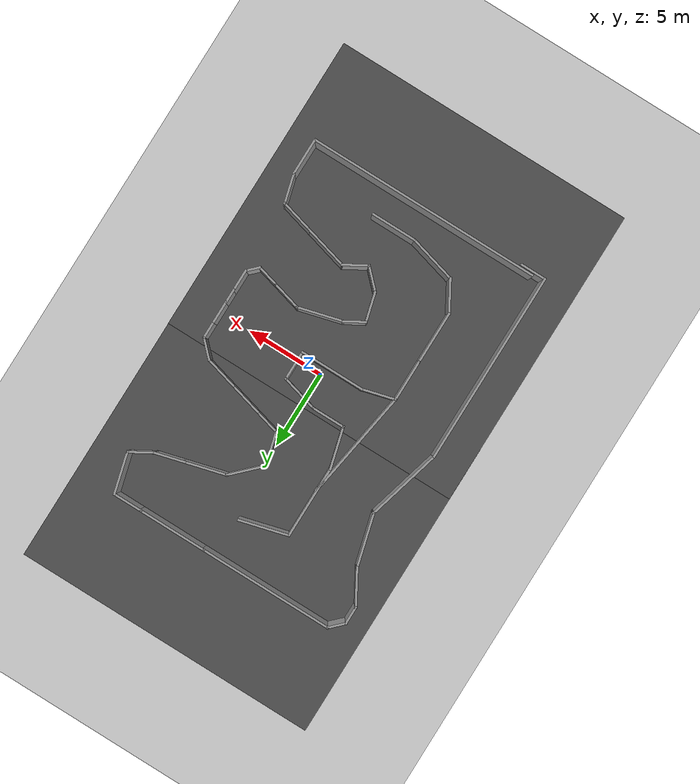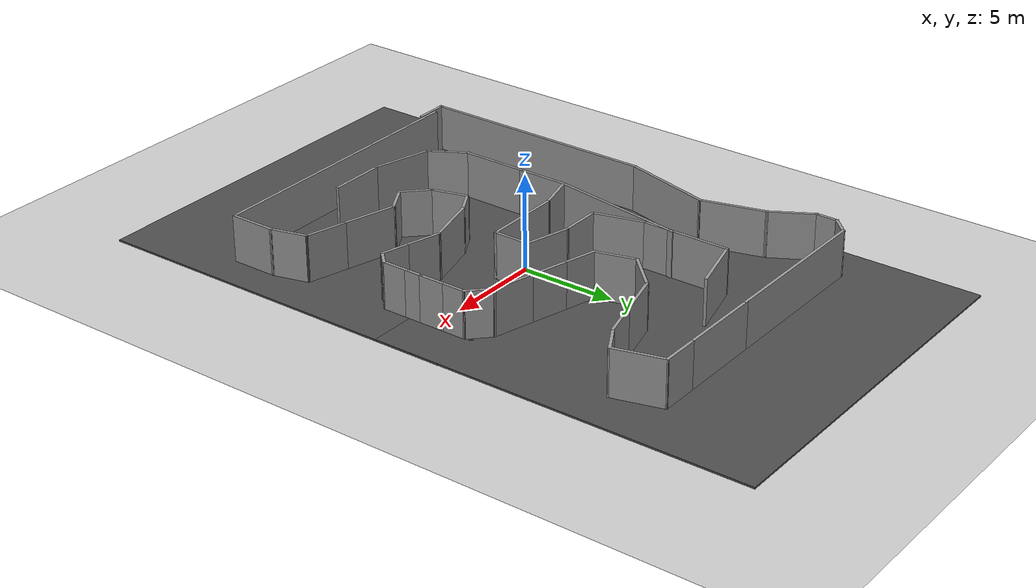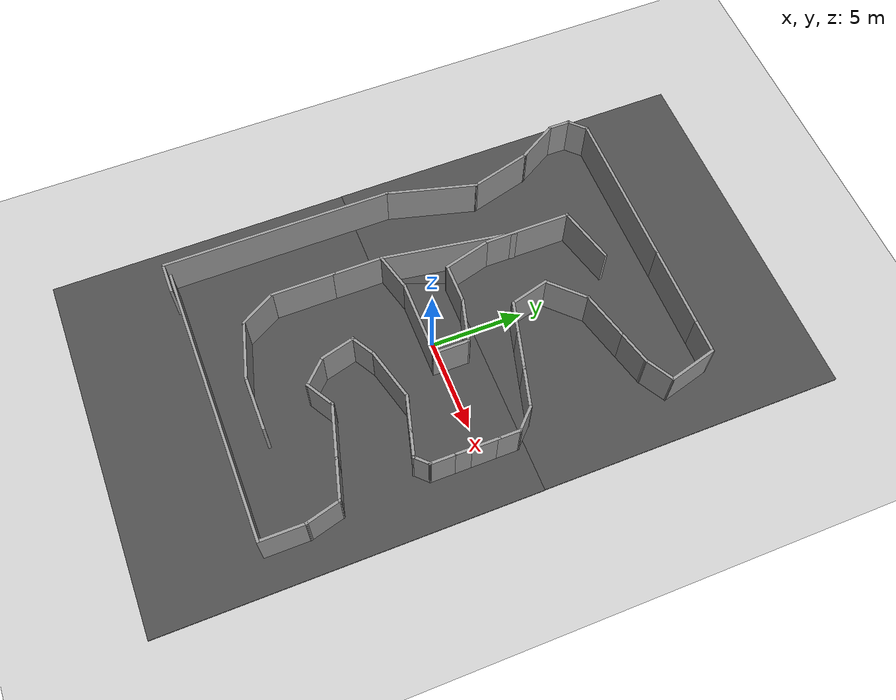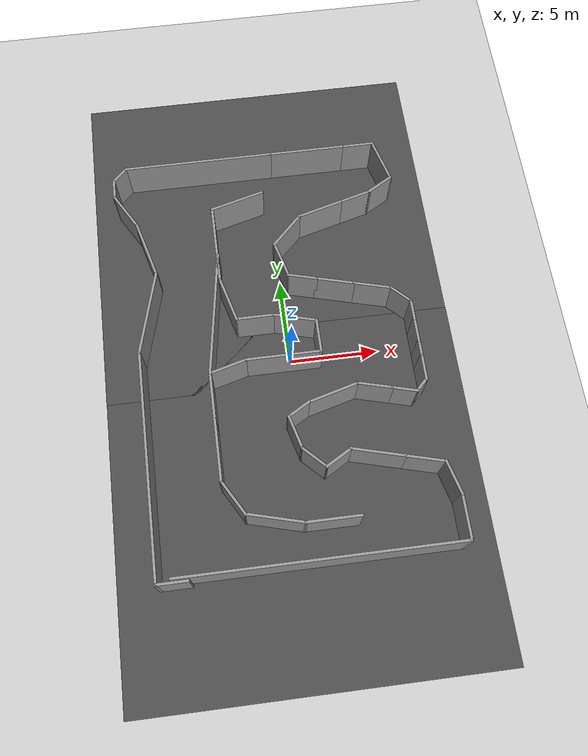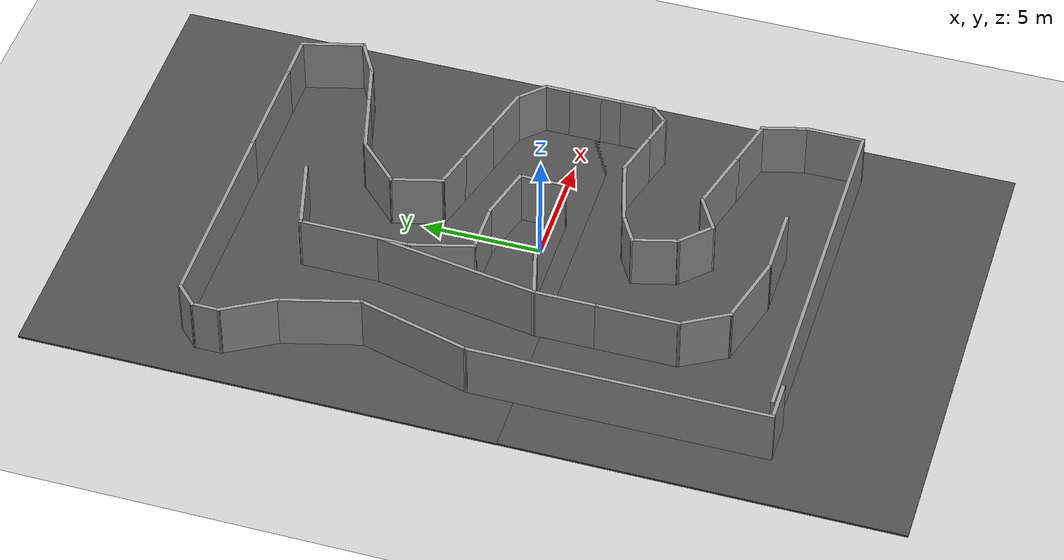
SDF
<sdf version="1.6">
 <world name="default">
  <light name="sun" type="directional">
   <pose>0 0 10 0 -0 0</pose>
   <diffuse>0.8 0.8 0.8 1</diffuse>
   <specular>0.2 0.2 0.2 1</specular>
   <attenuation>
    <range>1000</range>
    <constant>0.9</constant>
    <linear>0.01</linear>
    <quadratic>0.001</quadratic>
   </attenuation>
   <direction>-0.5 0.1 -0.9</direction>
  </light>
  <model name="ground_plane">
   <static>1</static>
   <link name="link">
    <collision name="collision">
     <geometry><plane><normal>0 0 1</normal><size>100 100</size></plane></geometry>
     <surface>
      <contact><collide_bitmask>65535</collide_bitmask></contact>
      <friction><ode><mu>100</mu><mu2>50</mu2></ode></friction>
     </surface>
    </collision>
    <visual name="visual">
     <cast_shadows>0</cast_shadows>
     <geometry><plane><normal>0 0 1</normal><size>100 100</size></plane></geometry>
     <material>
      <script><uri>file://media/materials/scripts/gazebo.material</uri><name>Gazebo/Grey</name></script>
     </material>
    </visual>
   </link>
  </model>
  <gravity>0 0 -9.8</gravity>
  <magnetic_field>6e-06 2.3e-05 -4.2e-05</magnetic_field>
  <atmosphere type="adiabatic"/>
  <physics name="default_physics" default="0" type="ode">
   <max_step_size>0.001</max_step_size>
   <real_time_factor>1</real_time_factor>
   <real_time_update_rate>1000</real_time_update_rate>
  </physics>
  <scene><ambient>0.4 0.4 0.4 1</ambient><background>0.7 0.7 0.7 1</background><shadows>1</shadows></scene>
  <spherical_coordinates>
   <surface_model>EARTH_WGS84</surface_model>
   <latitude_deg>0</latitude_deg>
   <longitude_deg>0</longitude_deg>
   <elevation>0</elevation>
   <heading_deg>0</heading_deg>
  </spherical_coordinates>
  <model name="map_v3">
   <pose>-0.727816 0.348135 0 0 -0 0</pose>
   <link name="Wall_100">
    <collision name="Wall_100_Collision">
     <geometry><box><size>2.25 0.15 2.5</size></box></geometry>
     <pose>0 0 1.25 0 -0 0</pose>
    </collision>
    <visual name="Wall_100_Visual">
     <pose>0 0 1.25 0 -0 0</pose>
     <geometry><box><size>2.25 0.15 2.5</size></box></geometry>
     <material>
      <script><uri>file://media/materials/scripts/gazebo.material</uri><name>Gazebo/Grey</name></script>
      <ambient>1 1 1 1</ambient>
     </material>
     <meta><layer>0</layer></meta>
    </visual>
    <pose>3.69163 3.23708 0 0 -0 2.87979</pose>
   </link>
   <link name="Wall_101">
    <collision name="Wall_101_Collision">
     <geometry><box><size>1.75 0.15 2.5</size></box></geometry>
     <pose>0 0 1.25 0 -0 0</pose>
    </collision>
    <visual name="Wall_101_Visual">
     <pose>0 0 1.25 0 -0 0</pose>
     <geometry><box><size>1.75 0.15 2.5</size></box></geometry>
     <material>
      <script><uri>file://media/materials/scripts/gazebo.material</uri><name>Gazebo/Grey</name></script>
      <ambient>1 1 1 1</ambient>
     </material>
     <meta><layer>0</layer></meta>
    </visual>
    <pose>1.90467 3.7159 0 0 -0 2.87979</pose>
   </link>
   <link name="Wall_102">
    <collision name="Wall_102_Collision">
     <geometry><box><size>2.25 0.15 2.5</size></box></geometry>
     <pose>0 0 1.25 0 -0 0</pose>
    </collision>
    <visual name="Wall_102_Visual">
     <pose>0 0 1.25 0 -0 0</pose>
     <geometry><box><size>2.25 0.15 2.5</size></box></geometry>
     <material>
      <script><uri>file://media/materials/scripts/gazebo.material</uri><name>Gazebo/Grey</name></script>
      <ambient>1 1 1 1</ambient>
     </material>
     <meta><layer>0</layer></meta>
    </visual>
    <pose>0.860167 4.93718 0 0 -0 1.8326</pose>
   </link>
   <link name="Wall_103">
    <collision name="Wall_103_Collision">
     <geometry><box><size>2.5 0.15 2.5</size></box></geometry>
     <pose>0 0 1.25 0 -0 0</pose>
    </collision>
    <visual name="Wall_103_Visual">
     <pose>0 0 1.25 0 -0 0</pose>
     <geometry><box><size>2.5 0.15 2.5</size></box></geometry>
     <material>
      <script><uri>file://media/materials/scripts/gazebo.material</uri><name>Gazebo/Grey</name></script>
      <ambient>1 1 1 1</ambient>
     </material>
     <meta><layer>0</layer></meta>
    </visual>
    <pose>1.41926 6.78225 0 0 -0 0.785398</pose>
   </link>
   <link name="Wall_104">
    <collision name="Wall_104_Collision">
     <geometry><box><size>2.75 0.15 2.5</size></box></geometry>
     <pose>0 0 1.25 0 -0 0</pose>
    </collision>
    <visual name="Wall_104_Visual">
     <pose>0 0 1.25 0 -0 0</pose>
     <geometry><box><size>2.75 0.15 2.5</size></box></geometry>
     <material>
      <script><uri>file://media/materials/scripts/gazebo.material</uri><name>Gazebo/Grey</name></script>
      <ambient>1 1 1 1</ambient>
     </material>
     <meta><layer>0</layer></meta>
    </visual>
    <pose>3.50581 7.94956 0 0 -0 0.261799</pose>
   </link>
   <link name="Wall_105">
    <collision name="Wall_105_Collision">
     <geometry><box><size>2 0.15 2.5</size></box></geometry>
     <pose>0 0 1.25 0 -0 0</pose>
    </collision>
    <visual name="Wall_105_Visual">
     <pose>0 0 1.25 0 -0 0</pose>
     <geometry><box><size>2 0.15 2.5</size></box></geometry>
     <material>
      <script><uri>file://media/materials/scripts/gazebo.material</uri><name>Gazebo/Grey</name></script>
      <ambient>1 1 1 1</ambient>
     </material>
     <meta><layer>0</layer></meta>
    </visual>
    <pose>5.655 8.52544 0 0 -0 0.261799</pose>
   </link>
   <link name="Wall_106">
    <collision name="Wall_106_Collision">
     <geometry><box><size>1.75 0.15 2.5</size></box></geometry>
     <pose>0 0 1.25 0 -0 0</pose>
    </collision>
    <visual name="Wall_106_Visual">
     <pose>0 0 1.25 0 -0 0</pose>
     <geometry><box><size>1.75 0.15 2.5</size></box></geometry>
     <material>
      <script><uri>file://media/materials/scripts/gazebo.material</uri><name>Gazebo/Grey</name></script>
      <ambient>1 1 1 1</ambient>
     </material>
     <meta><layer>0</layer></meta>
    </visual>
    <pose>7.2413 9.16484 0 0 -0 0.523599</pose>
   </link>
   <link name="Wall_107">
    <collision name="Wall_107_Collision">
     <geometry><box><size>2.75 0.15 2.5</size></box></geometry>
     <pose>0 0 1.25 0 -0 0</pose>
    </collision>
    <visual name="Wall_107_Visual">
     <pose>0 0 1.25 0 -0 0</pose>
     <geometry><box><size>2.75 0.15 2.5</size></box></geometry>
     <material>
      <script><uri>file://media/materials/scripts/gazebo.material</uri><name>Gazebo/Grey</name></script>
      <ambient>1 1 1 1</ambient>
     </material>
     <meta><layer>0</layer></meta>
    </visual>
    <pose>7.59765 10.8205 0 0 -0 1.8326</pose>
   </link>
   <link name="Wall_108">
    <collision name="Wall_108_Collision">
     <geometry><box><size>2 0.15 2.5</size></box></geometry>
     <pose>0 0 1.25 0 -0 0</pose>
    </collision>
    <visual name="Wall_108_Visual">
     <pose>0 0 1.25 0 -0 0</pose>
     <geometry><box><size>2 0.15 2.5</size></box></geometry>
     <material>
      <script><uri>file://media/materials/scripts/gazebo.material</uri><name>Gazebo/Grey</name></script>
      <ambient>1 1 1 1</ambient>
     </material>
     <meta><layer>0</layer></meta>
    </visual>
    <pose>6.33619 12.0763 0 0 -0 3.14159</pose>
   </link>
   <link name="Wall_109">
    <collision name="Wall_109_Collision">
     <geometry><box><size>4.5 0.15 2.5</size></box></geometry>
     <pose>0 0 1.25 0 -0 0</pose>
    </collision>
    <visual name="Wall_109_Visual">
     <pose>0 0 1.25 0 -0 0</pose>
     <geometry><box><size>4.5 0.15 2.5</size></box></geometry>
     <material>
      <script><uri>file://media/materials/scripts/gazebo.material</uri><name>Gazebo/Grey</name></script>
      <ambient>1 1 1 1</ambient>
     </material>
     <meta><layer>0</layer></meta>
    </visual>
    <pose>3.23619 12.0763 0 0 -0 3.14159</pose>
   </link>
   <link name="Wall_110">
    <collision name="Wall_110_Collision">
     <geometry><box><size>8.75 0.15 2.5</size></box></geometry>
     <pose>0 0 1.25 0 -0 0</pose>
    </collision>
    <visual name="Wall_110_Visual">
     <pose>0 0 1.25 0 -0 0</pose>
     <geometry><box><size>8.75 0.15 2.5</size></box></geometry>
     <material>
      <script><uri>file://media/materials/scripts/gazebo.material</uri><name>Gazebo/Grey</name></script>
      <ambient>1 1 1 1</ambient>
     </material>
     <meta><layer>0</layer></meta>
    </visual>
    <pose>-3.23881 12.0763 0 0 -0 3.14159</pose>
   </link>
   <link name="Wall_111">
    <collision name="Wall_111_Collision">
     <geometry><box><size>1.25 0.15 2.5</size></box></geometry>
     <pose>0 0 1.25 0 -0 0</pose>
    </collision>
    <visual name="Wall_111_Visual">
     <pose>0 0 1.25 0 -0 0</pose>
     <geometry><box><size>1.25 0.15 2.5</size></box></geometry>
     <material>
      <script><uri>file://media/materials/scripts/gazebo.material</uri><name>Gazebo/Grey</name></script>
      <ambient>1 1 1 1</ambient>
     </material>
     <meta><layer>0</layer></meta>
    </visual>
    <pose>-7.92772 11.6873 0 0 0 -2.35619</pose>
   </link>
   <link name="Wall_112">
    <collision name="Wall_112_Collision">
     <geometry><box><size>1.25 0.15 2.5</size></box></geometry>
     <pose>0 0 1.25 0 -0 0</pose>
    </collision>
    <visual name="Wall_112_Visual">
     <pose>0 0 1.25 0 -0 0</pose>
     <geometry><box><size>1.25 0.15 2.5</size></box></geometry>
     <material>
      <script><uri>file://media/materials/scripts/gazebo.material</uri><name>Gazebo/Grey</name></script>
      <ambient>1 1 1 1</ambient>
     </material>
     <meta><layer>0</layer></meta>
    </visual>
    <pose>-8.31663 10.7484 0 0 0 -1.5708</pose>
   </link>
   <link name="Wall_113">
    <collision name="Wall_113_Collision">
     <geometry><box><size>2.5 0.15 2.5</size></box></geometry>
     <pose>0 0 1.25 0 -0 0</pose>
    </collision>
    <visual name="Wall_113_Visual">
     <pose>0 0 1.25 0 -0 0</pose>
     <geometry><box><size>2.5 0.15 2.5</size></box></geometry>
     <material>
      <script><uri>file://media/materials/scripts/gazebo.material</uri><name>Gazebo/Grey</name></script>
      <ambient>1 1 1 1</ambient>
     </material>
     <meta><layer>0</layer></meta>
    </visual>
    <pose>-7.72913 9.18085 0 0 0 -1.0472</pose>
   </link>
   <link name="Wall_114">
    <collision name="Wall_114_Collision">
     <geometry><box><size>3.5 0.15 2.5</size></box></geometry>
     <pose>0 0 1.25 0 -0 0</pose>
    </collision>
    <visual name="Wall_114_Visual">
     <pose>0 0 1.25 0 -0 0</pose>
     <geometry><box><size>3.5 0.15 2.5</size></box></geometry>
     <material>
      <script><uri>file://media/materials/scripts/gazebo.material</uri><name>Gazebo/Grey</name></script>
      <ambient>1 1 1 1</ambient>
     </material>
     <meta><layer>0</layer></meta>
    </visual>
    <pose>-6.70811 6.54535 0 0 0 -1.309</pose>
   </link>
   <link name="Wall_115">
    <collision name="Wall_115_Collision">
     <geometry><box><size>5 0.15 2.5</size></box></geometry>
     <pose>0 0 1.25 0 -0 0</pose>
    </collision>
    <visual name="Wall_115_Visual">
     <pose>0 0 1.25 0 -0 0</pose>
     <geometry><box><size>5 0.15 2.5</size></box></geometry>
     <material>
      <script><uri>file://media/materials/scripts/gazebo.material</uri><name>Gazebo/Grey</name></script>
      <ambient>1 1 1 1</ambient>
     </material>
     <meta><layer>0</layer></meta>
    </visual>
    <pose>-6.90222 2.58505 0 0 0 -1.8326</pose>
   </link>
   <link name="Wall_116">
    <collision name="Wall_116_Collision">
     <geometry><box><size>12.5 0.15 2.5</size></box></geometry>
     <pose>0 0 1.25 0 -0 0</pose>
    </collision>
    <visual name="Wall_116_Visual">
     <pose>0 0 1.25 0 -0 0</pose>
     <geometry><box><size>12.5 0.15 2.5</size></box></geometry>
     <material>
      <script><uri>file://media/materials/scripts/gazebo.material</uri><name>Gazebo/Grey</name></script>
      <ambient>1 1 1 1</ambient>
     </material>
     <meta><layer>0</layer></meta>
    </visual>
    <pose>-7.52986 -5.93232 0 0 0 -1.5708</pose>
   </link>
   <link name="Wall_117">
    <collision name="Wall_117_Collision">
     <geometry><box><size>1.75 0.15 2.5</size></box></geometry>
     <pose>0 0 1.25 0 -0 0</pose>
    </collision>
    <visual name="Wall_117_Visual">
     <pose>0 0 1.25 0 -0 0</pose>
     <geometry><box><size>1.75 0.15 2.5</size></box></geometry>
     <material>
      <script><uri>file://media/materials/scripts/gazebo.material</uri><name>Gazebo/Grey</name></script>
      <ambient>1 1 1 1</ambient>
     </material>
     <meta><layer>0</layer></meta>
    </visual>
    <pose>-6.72986 -12.1073 0 0 -0 0</pose>
   </link>
   <link name="Wall_119">
    <collision name="Wall_119_Collision">
     <geometry><box><size>3 0.15 2.5</size></box></geometry>
     <pose>0 0 1.25 0 -0 0</pose>
    </collision>
    <visual name="Wall_119_Visual">
     <pose>0 0 1.25 0 -0 0</pose>
     <geometry><box><size>3 0.15 2.5</size></box></geometry>
     <material>
      <script><uri>file://media/materials/scripts/gazebo.material</uri><name>Gazebo/Grey</name></script>
      <ambient>1 1 1 1</ambient>
     </material>
     <meta><layer>0</layer></meta>
    </visual>
    <pose>1.64549 -9.99289 0 0 -0 3.14159</pose>
   </link>
   <link name="Wall_120">
    <collision name="Wall_120_Collision">
     <geometry><box><size>3.25 0.15 2.5</size></box></geometry>
     <pose>0 0 1.25 0 -0 0</pose>
    </collision>
    <visual name="Wall_120_Visual">
     <pose>0 0 1.25 0 -0 0</pose>
     <geometry><box><size>3.25 0.15 2.5</size></box></geometry>
     <material>
      <script><uri>file://media/materials/scripts/gazebo.material</uri><name>Gazebo/Grey</name></script>
      <ambient>1 1 1 1</ambient>
     </material>
     <meta><layer>0</layer></meta>
    </visual>
    <pose>-1.2767 -9.59172 0 0 -0 2.87979</pose>
   </link>
   <link name="Wall_121">
    <collision name="Wall_121_Collision">
     <geometry><box><size>2.25 0.15 2.5</size></box></geometry>
     <pose>0 0 1.25 0 -0 0</pose>
    </collision>
    <visual name="Wall_121_Visual">
     <pose>0 0 1.25 0 -0 0</pose>
     <geometry><box><size>2.25 0.15 2.5</size></box></geometry>
     <material>
      <script><uri>file://media/materials/scripts/gazebo.material</uri><name>Gazebo/Grey</name></script>
      <ambient>1 1 1 1</ambient>
     </material>
     <meta><layer>0</layer></meta>
    </visual>
    <pose>-3.29888 -8.28122 0 0 -0 2.0944</pose>
   </link>
   <link name="Wall_122">
    <collision name="Wall_122_Collision">
     <geometry><box><size>3.5 0.15 2.5</size></box></geometry>
     <pose>0 0 1.25 0 -0 0</pose>
    </collision>
    <visual name="Wall_122_Visual">
     <pose>0 0 1.25 0 -0 0</pose>
     <geometry><box><size>3.5 0.15 2.5</size></box></geometry>
     <material>
      <script><uri>file://media/materials/scripts/gazebo.material</uri><name>Gazebo/Grey</name></script>
      <ambient>1 1 1 1</ambient>
     </material>
     <meta><layer>0</layer></meta>
    </visual>
    <pose>-3.82388 -5.69689 0 0 -0 1.5708</pose>
   </link>
   <link name="Wall_123">
    <collision name="Wall_123_Collision">
     <geometry><box><size>2.75 0.15 2.5</size></box></geometry>
     <pose>0 0 1.25 0 -0 0</pose>
    </collision>
    <visual name="Wall_123_Visual">
     <pose>0 0 1.25 0 -0 0</pose>
     <geometry><box><size>2.75 0.15 2.5</size></box></geometry>
     <material>
      <script><uri>file://media/materials/scripts/gazebo.material</uri><name>Gazebo/Grey</name></script>
      <ambient>1 1 1 1</ambient>
     </material>
     <meta><layer>0</layer></meta>
    </visual>
    <pose>-3.82388 -2.72189 0 0 -0 1.5708</pose>
   </link>
   <link name="Wall_124">
    <collision name="Wall_124_Collision">
     <geometry><box><size>2.25 0.15 2.5</size></box></geometry>
     <pose>0 0 1.25 0 -0 0</pose>
    </collision>
    <visual name="Wall_124_Visual">
     <pose>0 0 1.25 0 -0 0</pose>
     <geometry><box><size>2.25 0.15 2.5</size></box></geometry>
     <material>
      <script><uri>file://media/materials/scripts/gazebo.material</uri><name>Gazebo/Grey</name></script>
      <ambient>1 1 1 1</ambient>
     </material>
     <meta><layer>0</layer></meta>
    </visual>
    <pose>-2.80966 -1.15013 0 0 -0 0.261799</pose>
   </link>
   <link name="Wall_125">
    <collision name="Wall_125_Collision">
     <geometry><box><size>4.25 0.15 2.5</size></box></geometry>
     <pose>0 0 1.25 0 -0 0</pose>
    </collision>
    <visual name="Wall_125_Visual">
     <pose>0 0 1.25 0 -0 0</pose>
     <geometry><box><size>4.25 0.15 2.5</size></box></geometry>
     <material>
      <script><uri>file://media/materials/scripts/gazebo.material</uri><name>Gazebo/Grey</name></script>
      <ambient>1 1 1 1</ambient>
     </material>
     <meta><layer>0</layer></meta>
    </visual>
    <pose>0.254562 -0.878375 0 0 -0 0</pose>
   </link>
   <link name="Wall_126">
    <collision name="Wall_126_Collision">
     <geometry><box><size>2 0.15 2.5</size></box></geometry>
     <pose>0 0 1.25 0 -0 0</pose>
    </collision>
    <visual name="Wall_126_Visual">
     <pose>0 0 1.25 0 -0 0</pose>
     <geometry><box><size>2 0.15 2.5</size></box></geometry>
     <material>
      <script><uri>file://media/materials/scripts/gazebo.material</uri><name>Gazebo/Grey</name></script>
      <ambient>1 1 1 1</ambient>
     </material>
     <meta><layer>0</layer></meta>
    </visual>
    <pose>2.30456 0.046625 0 0 -0 1.5708</pose>
   </link>
   <link name="Wall_127">
    <collision name="Wall_127_Collision">
     <geometry><box><size>2.5 0.15 2.5</size></box></geometry>
     <pose>0 0 1.25 0 -0 0</pose>
    </collision>
    <visual name="Wall_127_Visual">
     <pose>0 0 1.25 0 -0 0</pose>
     <geometry><box><size>2.5 0.15 2.5</size></box></geometry>
     <material>
      <script><uri>file://media/materials/scripts/gazebo.material</uri><name>Gazebo/Grey</name></script>
      <ambient>1 1 1 1</ambient>
     </material>
     <meta><layer>0</layer></meta>
    </visual>
    <pose>1.1696 1.27574 0 0 -0 2.87979</pose>
   </link>
   <link name="Wall_128">
    <collision name="Wall_128_Collision">
     <geometry><box><size>2.25 0.15 2.5</size></box></geometry>
     <pose>0 0 1.25 0 -0 0</pose>
    </collision>
    <visual name="Wall_128_Visual">
     <pose>0 0 1.25 0 -0 0</pose>
     <geometry><box><size>2.25 0.15 2.5</size></box></geometry>
     <material>
      <script><uri>file://media/materials/scripts/gazebo.material</uri><name>Gazebo/Grey</name></script>
      <ambient>1 1 1 1</ambient>
     </material>
     <meta><layer>0</layer></meta>
    </visual>
    <pose>-1.01536 1.57985 0 0 -0 3.14159</pose>
   </link>
   <link name="Wall_129">
    <collision name="Wall_129_Collision">
     <geometry><box><size>2.75 0.15 2.5</size></box></geometry>
     <pose>0 0 1.25 0 -0 0</pose>
    </collision>
    <visual name="Wall_129_Visual">
     <pose>0 0 1.25 0 -0 0</pose>
     <geometry><box><size>2.75 0.15 2.5</size></box></geometry>
     <material>
      <script><uri>file://media/materials/scripts/gazebo.material</uri><name>Gazebo/Grey</name></script>
      <ambient>1 1 1 1</ambient>
     </material>
     <meta><layer>0</layer></meta>
    </visual>
    <pose>-2.40183 2.83555 0 0 -0 1.8326</pose>
   </link>
   <link name="Wall_130">
    <collision name="Wall_130_Collision">
     <geometry><box><size>4.75 0.15 2.5</size></box></geometry>
     <pose>0 0 1.25 0 -0 0</pose>
    </collision>
    <visual name="Wall_130_Visual">
     <pose>0 0 1.25 0 -0 0</pose>
     <geometry><box><size>4.75 0.15 2.5</size></box></geometry>
     <material>
      <script><uri>file://media/materials/scripts/gazebo.material</uri><name>Gazebo/Grey</name></script>
      <ambient>1 1 1 1</ambient>
     </material>
     <meta><layer>0</layer></meta>
    </visual>
    <pose>-2.73829 6.39126 0 0 -0 1.5708</pose>
   </link>
   <link name="Wall_131">
    <collision name="Wall_131_Collision">
     <geometry><box><size>3.25 0.15 2.5</size></box></geometry>
     <pose>0 0 1.25 0 -0 0</pose>
    </collision>
    <visual name="Wall_131_Visual">
     <pose>0 0 1.25 0 -0 0</pose>
     <geometry><box><size>3.25 0.15 2.5</size></box></geometry>
     <material>
      <script><uri>file://media/materials/scripts/gazebo.material</uri><name>Gazebo/Grey</name></script>
      <ambient>1 1 1 1</ambient>
     </material>
     <meta><layer>0</layer></meta>
    </visual>
    <pose>-1.24111 9.09243 0 0 -0 0.261799</pose>
   </link>
   <link name="Wall_133">
    <collision name="Wall_133_Collision">
     <geometry><box><size>7.34611 0.15 2.5</size></box></geometry>
     <pose>0 0 1.25 0 -0 0</pose>
    </collision>
    <visual name="Wall_133_Visual">
     <pose>0 0 1.25 0 -0 0</pose>
     <geometry><box><size>7.34611 0.15 2.5</size></box></geometry>
     <material>
      <script><uri>file://media/materials/scripts/gazebo.material</uri><name>Gazebo/Grey</name></script>
      <ambient>1 1 1 1</ambient>
     </material>
     <meta><layer>0</layer></meta>
    </visual>
    <pose>-3.26118 2.13189 0 0 0 -1.72783</pose>
   </link>
   <link name="Wall_81">
    <collision name="Wall_81_Collision">
     <geometry><box><size>15.25 0.15 2.5</size></box></geometry>
     <pose>0 0 1.25 0 -0 0</pose>
    </collision>
    <visual name="Wall_81_Visual">
     <pose>0 0 1.25 0 -0 0</pose>
     <geometry><box><size>15.25 0.15 2.5</size></box></geometry>
     <material>
      <script><uri>file://media/materials/scripts/gazebo.material</uri><name>Gazebo/Grey</name></script>
      <ambient>1 1 1 1</ambient>
     </material>
     <meta><layer>0</layer></meta>
    </visual>
    <pose>0.780839 -11.9047 0 0 -0 0</pose>
   </link>
   <link name="Wall_82">
    <collision name="Wall_82_Collision">
     <geometry><box><size>2.5 0.15 2.5</size></box></geometry>
     <pose>0 0 1.25 0 -0 0</pose>
    </collision>
    <visual name="Wall_82_Visual">
     <pose>0 0 1.25 0 -0 0</pose>
     <geometry><box><size>2.5 0.15 2.5</size></box></geometry>
     <material>
      <script><uri>file://media/materials/scripts/gazebo.material</uri><name>Gazebo/Grey</name></script>
      <ambient>1 1 1 1</ambient>
     </material>
     <meta><layer>0</layer></meta>
    </visual>
    <pose>8.33084 -10.7297 0 0 -0 1.5708</pose>
   </link>
   <link name="Wall_83">
    <collision name="Wall_83_Collision">
     <geometry><box><size>2 0.15 2.5</size></box></geometry>
     <pose>0 0 1.25 0 -0 0</pose>
    </collision>
    <visual name="Wall_83_Visual">
     <pose>0 0 1.25 0 -0 0</pose>
     <geometry><box><size>2 0.15 2.5</size></box></geometry>
     <material>
      <script><uri>file://media/materials/scripts/gazebo.material</uri><name>Gazebo/Grey</name></script>
      <ambient>1 1 1 1</ambient>
     </material>
     <meta><layer>0</layer></meta>
    </visual>
    <pose>8.09143 -8.66121 0 0 -0 1.8326</pose>
   </link>
   <link name="Wall_84">
    <collision name="Wall_84_Collision">
     <geometry><box><size>2.25 0.15 2.5</size></box></geometry>
     <pose>0 0 1.25 0 -0 0</pose>
    </collision>
    <visual name="Wall_84_Visual">
     <pose>0 0 1.25 0 -0 0</pose>
     <geometry><box><size>2.25 0.15 2.5</size></box></geometry>
     <material>
      <script><uri>file://media/materials/scripts/gazebo.material</uri><name>Gazebo/Grey</name></script>
      <ambient>1 1 1 1</ambient>
     </material>
     <meta><layer>0</layer></meta>
    </visual>
    <pose>6.8378 -7.49597 0 0 -0 2.87979</pose>
   </link>
   <link name="Wall_85">
    <collision name="Wall_85_Collision">
     <geometry><box><size>3 0.15 2.5</size></box></geometry>
     <pose>0 0 1.25 0 -0 0</pose>
    </collision>
    <visual name="Wall_85_Visual">
     <pose>0 0 1.25 0 -0 0</pose>
     <geometry><box><size>3 0.15 2.5</size></box></geometry>
     <material>
      <script><uri>file://media/materials/scripts/gazebo.material</uri><name>Gazebo/Grey</name></script>
      <ambient>1 1 1 1</ambient>
     </material>
     <meta><layer>0</layer></meta>
    </visual>
    <pose>4.44714 -6.85539 0 0 -0 2.87979</pose>
   </link>
   <link name="Wall_86">
    <collision name="Wall_86_Collision">
     <geometry><box><size>1.75 0.15 2.5</size></box></geometry>
     <pose>0 0 1.25 0 -0 0</pose>
    </collision>
    <visual name="Wall_86_Visual">
     <pose>0 0 1.25 0 -0 0</pose>
     <geometry><box><size>1.75 0.15 2.5</size></box></geometry>
     <material>
      <script><uri>file://media/materials/scripts/gazebo.material</uri><name>Gazebo/Grey</name></script>
      <ambient>1 1 1 1</ambient>
     </material>
     <meta><layer>0</layer></meta>
    </visual>
    <pose>2.37787 -6.88658 0 0 0 -2.61799</pose>
   </link>
   <link name="Wall_87">
    <collision name="Wall_87_Collision">
     <geometry><box><size>1.75 0.15 2.5</size></box></geometry>
     <pose>0 0 1.25 0 -0 0</pose>
    </collision>
    <visual name="Wall_87_Visual">
     <pose>0 0 1.25 0 -0 0</pose>
     <geometry><box><size>1.75 0.15 2.5</size></box></geometry>
     <material>
      <script><uri>file://media/materials/scripts/gazebo.material</uri><name>Gazebo/Grey</name></script>
      <ambient>1 1 1 1</ambient>
     </material>
     <meta><layer>0</layer></meta>
    </visual>
    <pose>1.11936 -6.72089 0 0 -0 2.35619</pose>
   </link>
   <link name="Wall_88">
    <collision name="Wall_88_Collision">
     <geometry><box><size>2 0.15 2.5</size></box></geometry>
     <pose>0 0 1.25 0 -0 0</pose>
    </collision>
    <visual name="Wall_88_Visual">
     <pose>0 0 1.25 0 -0 0</pose>
     <geometry><box><size>2 0.15 2.5</size></box></geometry>
     <material>
      <script><uri>file://media/materials/scripts/gazebo.material</uri><name>Gazebo/Grey</name></script>
      <ambient>1 1 1 1</ambient>
     </material>
     <meta><layer>0</layer></meta>
    </visual>
    <pose>0.314272 -5.26173 0 0 -0 1.8326</pose>
   </link>
   <link name="Wall_89">
    <collision name="Wall_89_Collision">
     <geometry><box><size>1.5 0.15 2.5</size></box></geometry>
     <pose>0 0 1.25 0 -0 0</pose>
    </collision>
    <visual name="Wall_89_Visual">
     <pose>0 0 1.25 0 -0 0</pose>
     <geometry><box><size>1.5 0.15 2.5</size></box></geometry>
     <material>
      <script><uri>file://media/materials/scripts/gazebo.material</uri><name>Gazebo/Grey</name></script>
      <ambient>1 1 1 1</ambient>
     </material>
     <meta><layer>0</layer></meta>
    </visual>
    <pose>0.659431 -4.03074 0 0 -0 0.523599</pose>
   </link>
   <link name="Wall_90">
    <collision name="Wall_90_Collision">
     <geometry><box><size>3 0.15 2.5</size></box></geometry>
     <pose>0 0 1.25 0 -0 0</pose>
    </collision>
    <visual name="Wall_90_Visual">
     <pose>0 0 1.25 0 -0 0</pose>
     <geometry><box><size>3 0.15 2.5</size></box></geometry>
     <material>
      <script><uri>file://media/materials/scripts/gazebo.material</uri><name>Gazebo/Grey</name></script>
      <ambient>1 1 1 1</ambient>
     </material>
     <meta><layer>0</layer></meta>
    </visual>
    <pose>2.62044 -3.32443 0 0 -0 0.261799</pose>
   </link>
   <link name="Wall_91">
    <collision name="Wall_91_Collision">
     <geometry><box><size>2 0.15 2.5</size></box></geometry>
     <pose>0 0 1.25 0 -0 0</pose>
    </collision>
    <visual name="Wall_91_Visual">
     <pose>0 0 1.25 0 -0 0</pose>
     <geometry><box><size>2 0.15 2.5</size></box></geometry>
     <material>
      <script><uri>file://media/materials/scripts/gazebo.material</uri><name>Gazebo/Grey</name></script>
      <ambient>1 1 1 1</ambient>
     </material>
     <meta><layer>0</layer></meta>
    </visual>
    <pose>4.89037 -3.19502 0 0 0 -0.261799</pose>
   </link>
   <link name="Wall_92">
    <collision name="Wall_92_Collision">
     <geometry><box><size>1.5 0.15 2.5</size></box></geometry>
     <pose>0 0 1.25 0 -0 0</pose>
    </collision>
    <visual name="Wall_92_Visual">
     <pose>0 0 1.25 0 -0 0</pose>
     <geometry><box><size>1.5 0.15 2.5</size></box></geometry>
     <material>
      <script><uri>file://media/materials/scripts/gazebo.material</uri><name>Gazebo/Grey</name></script>
      <ambient>1 1 1 1</ambient>
     </material>
     <meta><layer>0</layer></meta>
    </visual>
    <pose>6.43585 -3.60913 0 0 0 -0.261799</pose>
   </link>
   <link name="Wall_93">
    <collision name="Wall_93_Collision">
     <geometry><box><size>1 0.15 2.5</size></box></geometry>
     <pose>0 0 1.25 0 -0 0</pose>
    </collision>
    <visual name="Wall_93_Visual">
     <pose>0 0 1.25 0 -0 0</pose>
     <geometry><box><size>1 0.15 2.5</size></box></geometry>
     <material>
      <script><uri>file://media/materials/scripts/gazebo.material</uri><name>Gazebo/Grey</name></script>
      <ambient>1 1 1 1</ambient>
     </material>
     <meta><layer>0</layer></meta>
    </visual>
    <pose>7.38837 -3.48331 0 0 -0 0.785398</pose>
   </link>
   <link name="Wall_94">
    <collision name="Wall_94_Collision">
     <geometry><box><size>1.5 0.15 2.5</size></box></geometry>
     <pose>0 0 1.25 0 -0 0</pose>
    </collision>
    <visual name="Wall_94_Visual">
     <pose>0 0 1.25 0 -0 0</pose>
     <geometry><box><size>1.5 0.15 2.5</size></box></geometry>
     <material>
      <script><uri>file://media/materials/scripts/gazebo.material</uri><name>Gazebo/Grey</name></script>
      <ambient>1 1 1 1</ambient>
     </material>
     <meta><layer>0</layer></meta>
    </visual>
    <pose>7.68889 -2.50779 0 0 -0 1.5708</pose>
   </link>
   <link name="Wall_95">
    <collision name="Wall_95_Collision">
     <geometry><box><size>1 0.15 2.5</size></box></geometry>
     <pose>0 0 1.25 0 -0 0</pose>
    </collision>
    <visual name="Wall_95_Visual">
     <pose>0 0 1.25 0 -0 0</pose>
     <geometry><box><size>1 0.15 2.5</size></box></geometry>
     <material>
      <script><uri>file://media/materials/scripts/gazebo.material</uri><name>Gazebo/Grey</name></script>
      <ambient>1 1 1 1</ambient>
     </material>
     <meta><layer>0</layer></meta>
    </visual>
    <pose>7.68889 -1.40779 0 0 -0 1.5708</pose>
   </link>
   <link name="Wall_96">
    <collision name="Wall_96_Collision">
     <geometry><box><size>1.5 0.15 2.5</size></box></geometry>
     <pose>0 0 1.25 0 -0 0</pose>
    </collision>
    <visual name="Wall_96_Visual">
     <pose>0 0 1.25 0 -0 0</pose>
     <geometry><box><size>1.5 0.15 2.5</size></box></geometry>
     <material>
      <script><uri>file://media/materials/scripts/gazebo.material</uri><name>Gazebo/Grey</name></script>
      <ambient>1 1 1 1</ambient>
     </material>
     <meta><layer>0</layer></meta>
    </visual>
    <pose>7.68889 -0.30779 0 0 -0 1.5708</pose>
   </link>
   <link name="Wall_97">
    <collision name="Wall_97_Collision">
     <geometry><box><size>1.25 0.15 2.5</size></box></geometry>
     <pose>0 0 1.25 0 -0 0</pose>
    </collision>
    <visual name="Wall_97_Visual">
     <pose>0 0 1.25 0 -0 0</pose>
     <geometry><box><size>1.25 0.15 2.5</size></box></geometry>
     <material>
      <script><uri>file://media/materials/scripts/gazebo.material</uri><name>Gazebo/Grey</name></script>
      <ambient>1 1 1 1</ambient>
     </material>
     <meta><layer>0</layer></meta>
    </visual>
    <pose>7.68889 0.91721 0 0 -0 1.5708</pose>
   </link>
   <link name="Wall_98">
    <collision name="Wall_98_Collision">
     <geometry><box><size>1.5 0.15 2.5</size></box></geometry>
     <pose>0 0 1.25 0 -0 0</pose>
    </collision>
    <visual name="Wall_98_Visual">
     <pose>0 0 1.25 0 -0 0</pose>
     <geometry><box><size>1.5 0.15 2.5</size></box></geometry>
     <material>
      <script><uri>file://media/materials/scripts/gazebo.material</uri><name>Gazebo/Grey</name></script>
      <ambient>1 1 1 1</ambient>
     </material>
     <meta><layer>0</layer></meta>
    </visual>
    <pose>7.21159 1.94451 0 0 -0 2.35619</pose>
   </link>
   <link name="Wall_99">
    <collision name="Wall_99_Collision">
     <geometry><box><size>2.25 0.15 2.5</size></box></geometry>
     <pose>0 0 1.25 0 -0 0</pose>
    </collision>
    <visual name="Wall_99_Visual">
     <pose>0 0 1.25 0 -0 0</pose>
     <geometry><box><size>2.25 0.15 2.5</size></box></geometry>
     <material>
      <script><uri>file://media/materials/scripts/gazebo.material</uri><name>Gazebo/Grey</name></script>
      <ambient>1 1 1 1</ambient>
     </material>
     <meta><layer>0</layer></meta>
    </visual>
    <pose>5.72007 2.69356 0 0 -0 2.87979</pose>
   </link>
   <static>1</static>
  </model>
  <model name="asphalt_plane">
   <static>1</static>
   <link name="link">
    <collision name="collision"><geometry><box><size>20 20 0.1</size></box></geometry></collision>
    <visual name="visual">
     <cast_shadows>0</cast_shadows>
     <geometry><box><size>20 20 0.1</size></box></geometry>
     <material>
      <script>
       <uri>model://asphalt_plane/materials/scripts</uri>
       <uri>model://asphalt_plane/materials/textures</uri>
       <name>vrc/asphalt</name>
      </script>
     </material>
    </visual>
   </link>
   <pose>-0.559048 -7.76052 0 0 -0 0</pose>
  </model>
  <model name="asphalt_plane_0">
   <static>1</static>
   <link name="link">
    <collision name="collision"><geometry><box><size>20 20 0.1</size></box></geometry></collision>
    <visual name="visual">
     <cast_shadows>0</cast_shadows>
     <geometry><box><size>20 20 0.1</size></box></geometry>
     <material>
      <script>
       <uri>model://asphalt_plane/materials/scripts</uri>
       <uri>model://asphalt_plane/materials/textures</uri>
       <name>vrc/asphalt</name>
      </script>
     </material>
    </visual>
   </link>
   <pose>-0.572545 8.64381 0 0 -0 0</pose>
  </model>
 </world>
</sdf>
